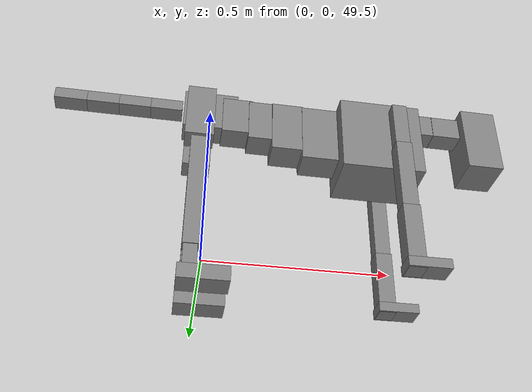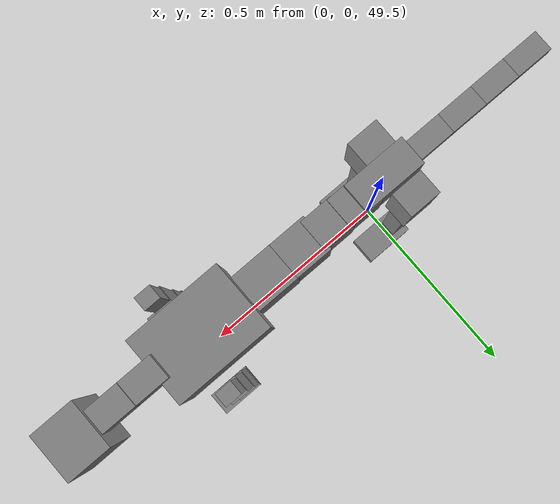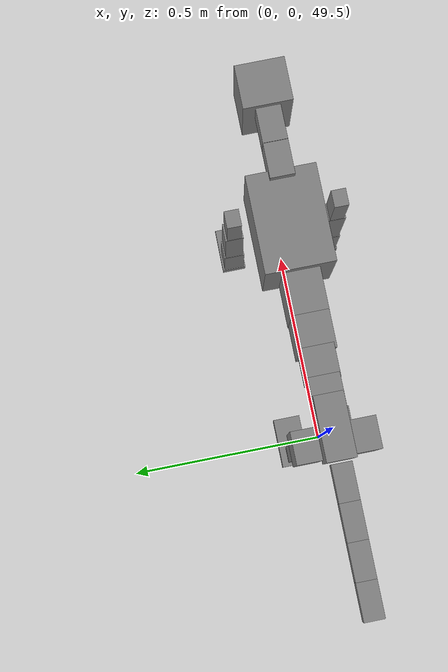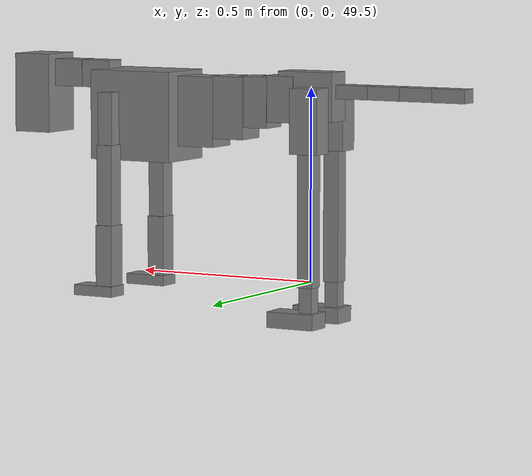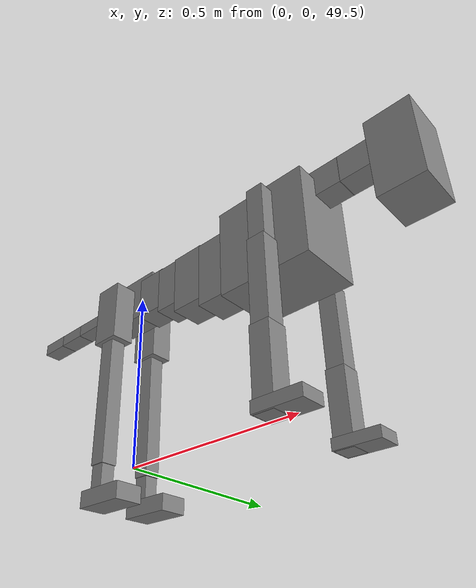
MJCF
<mujoco model="dog">

    <default>
        <joint armature="0.02" stiffness="1" damping="0.2" limited="true"/>
        <geom condim="3" friction="1 0.05 0.05" margin="0.01"/>
        <motor ctrllimited="true" ctrlrange="-1.0 1.0" forcelimited="true" gear="50"/>
    </default>

    <compiler inertiafromgeom="true" angle="radian"/>

    <option timestep="0.016" iterations="50" tolerance="1e-10" solver="Newton" jacobian="dense" cone="pyramidal"/>

    <size nconmax="20000" njmax="60000" nstack="5000000"/>
    <visual>
        <map force="0.1" zfar="30"/>
        <rgba haze="0.15 0.25 0.35 1"/>
        <quality shadowsize="2048"/>
        <global offwidth="800" offheight="800"/>
    </visual>

    <asset>
        <texture type="skybox" builtin="gradient" rgb1="0.3 0.5 0.7" rgb2="0 0 0" width="512" height="512"/>
        <texture name="texplane" type="2d" builtin="checker" rgb1=".2 .3 .4" rgb2=".1 0.15 0.2" width="512" height="512"
                 mark="cross" markrgb=".8 .8 .8"/>
        <texture name="texgeom" type="cube" builtin="flat" mark="cross" width="127" height="1278" rgb1="0.8 0.6 0.4"
                 rgb2="0.8 0.6 0.4" markrgb="1 1 1" random="0.01"/>

        <material name="matplane" reflectance="0.3" texture="texplane" texrepeat="1 1" texuniform="true"/>
        <material name="matgeom" texture="texgeom" texuniform="true" rgba="0.8 0.6 .4 1"/>
    </asset>

    <worldbody>
        <geom name="floor" pos="0 0 0" size="0 0 .25" type="plane" material="matplane" condim="3"/>

        <light directional="false" diffuse=".2 .2 .2" specular="0 0 0" pos="0 0 5" dir="0 0 -1" castshadow="false"/>
        <light mode="targetbodycom" target="torso" directional="false" diffuse=".8 .8 .8" specular="0.3 0.3 0.3"
               pos="0 0 4.0" dir="0 0 -1"/>

        <body name="root" pos="0 0 50">
            <freejoint name="root_1"/>
            <geom type="box" pos="0 0 -0.02" size="0.0774  0.0358  0.063" density="2030"/>

            <body name="spine1" pos="0.054 0 0">
                <joint name="spine1_y" axis="0 1 0" range="0 0.7" limited="true"/>
                <geom type="box" pos="0.02375 0 -0.03" size="0.04375  0.0375  0.05985" density="2030"/>

                <body name="spine2" pos="0.0612 0 0">
                    <joint name="spine2_y" axis="0 1 0" range="-0.15 0.15" limited="true"/>
                    <geom type="box" pos="0.03555  0  -0.04" size="0.04055  0.039  0.06615" density="2030"/>

                    <body name="spine3" pos="0.0730 0 0">
                        <joint name="spine3_y" axis="0 1 0" range="-0.15 0.15" limited="true"/>
                        <geom type="box" pos="0.03555  0  -0.057" size="0.04555  0.0445  0.081" density="2030"/>

                        <body name="spine4" pos="0.0780 0 0">
                            <joint name="spine4_y" axis="0 1 0" range="-0.15 0.15" limited="true"/>
                            <geom type="box" pos="0.05265  0  -0.07" size="0.05265  0.045  0.09135" density="2030"/>

                            <body name="torso" pos="0.1082 0 0">
                                <joint name="torso_y" axis="0 1 0" range="-0.15 0.15" limited="true"/>
                                <geom type="box" pos="0.11925  0  -0.085" size="0.11925  0.085  0.11745"
                                      density="2030"/>

                                <body name="neck1" pos="0.2160  0   0.0180">
                                    <joint name="neck1_y" axis="0 1 0" range="-1.2  -1" limited="true"/>
                                    <geom type="box" pos="0.0423  0  0" size="0.0423  0.03  0.036" density="2325"/>

                                    <body name="neck2" pos="0.0853  0  0">
                                        <joint name="neck2_y" axis="0 1 0" range="0.1  0" limited="true"/>
                                        <geom type="box" pos="0.0423  0  0" size="0.0423  0.03  0.036" density="2325"/>

                                        <body name="head" pos="0.0853  0  0">
                                            <joint name="head_y" axis="0 1 0" range="-0.3  -0.2" limited="true"/>
                                            <geom type="box" pos="0.0531  0  -0.055" size="0.0531  0.06  0.1044"
                                                  density="4030"/>

                                        </body>
                                    </body>
                                </body>

                                <body name="front_shoulder" pos="0.156  0   -0.0480">
                                    <joint name="front_shoulder_y" axis="0 1 0" range="-1 1.5" limited="true"/>
                                    <geom type="box" pos="0 0.13 -0.0553" size="0.0210  0.0179  0.0819" density="1158"/>
                                    <geom type="box" pos="0 -0.13 -0.0553" size="0.0210  0.0179  0.0819"
                                          density="1158"/>

                                    <body name="front_elbow" pos="0  0  -0.1105">
                                        <joint name="front_elbow_y" axis="0 1 0" range="-2 0" limited="true"/>
                                        <geom type="box" pos="0 0.13 -0.1115" size="0.0223  0.0228  0.1115"
                                              density="1081"/>
                                        <geom type="box" pos="0 -0.13 -0.1115" size="0.0223  0.0228  0.1115"
                                              density="1081"/>

                                        <body name="front_wrist" pos="0  0  -0.2230">
                                            <joint name="front_wrist_y" axis="0 1 0" range="-0.2 0" limited="true"/>
                                            <geom type="box" pos="0 0.13 -0.0804" size="0.0238  0.0265  0.0935"
                                                  density="1664"/>
                                            <geom type="box" pos="0 -0.13 -0.0804" size="0.0238  0.0265  0.0935"
                                                  density="1664"/>

                                            <body name="front_finger_end" pos="0  0  -0.1607">
                                                <joint name="front_finger_y" axis="0 1 0" range="-0.4 1"
                                                       limited="true"/>
                                                <geom type="box" pos="0.0312  0.13  0.0012"
                                                      size="0.0572  0.0312  0.0138" density="1515"/>
                                                <geom type="box" pos="0.0312  -0.13  0.0012"
                                                      size="0.0572  0.0312  0.0138" density="1515"/>

                                            </body>

                                        </body>
                                    </body>
                                </body>

                            </body>
                        </body>
                    </body>
                </body>
            </body>

            <body name="back_hip" pos="-0.03 0 -0.018">
                <joint name="back_hip_y" axis="0 1 0" range="-1.5 0.3" limited="true"/>
                <geom type="box" pos="0 0.07 -0.0610" size="0.0394  0.0309  0.0838" density="1154"/>
                <geom type="box" pos="0 -0.07 -0.0610" size="0.0394  0.0309  0.0838" density="1154"/>

                <body name="back_knee" pos="0  0  -0.1220">
                    <joint name="back_knee_y" axis="0 1 0" range="0 2.8" limited="true"/>
                    <geom type="box" pos="0 0.07 -0.1737" size="0.0212  0.0209  0.1893" density="1227"/>
                    <geom type="box" pos="0 -0.07 -0.1737" size="0.0212  0.0209  0.1893" density="1227"/>

                    <body name="back_ankle" pos="0  0  -0.3474">
                        <joint name="back_ankle_y" axis="0 1 0" range="-2.2 0" limited="true"/>
                        <geom type="box" pos="0 0.07 -0.0475" size="0.0184  0.0184  0.0588" density="1284"/>
                        <geom type="box" pos="0 -0.07 -0.0475" size="0.0184  0.0184  0.0588" density="1284"/>

                        <body name="back_toe_end" pos="0  0  -0.0951">
                            <joint name="back_toe_y" axis="0 1 0" range="-0.4 1" limited="true"/>
                            <geom type="box" pos="0.0360  0.07  -0.0055" size="0.0659  0.0360  0.0205" density="1515"/>
                            <geom type="box" pos="0.0360  -0.07  -0.0055" size="0.0659  0.0360  0.0205" density="1515"/>

                        </body>
                    </body>
                </body>
            </body>

            <body name="tail1" pos="-0.074 0 -0.006">
                <joint name="tail1_y" axis="0 1 0" range="-0.2 0.2" limited="true"/>
                <geom type="box" pos="-0.0536  0  0" size="0.045  0.025  0.0175" density="1587"/>

                <body name="tail2" pos="-0.09 0 0">
                    <joint name="tail2_y" axis="0 1 0" range="-0.2 0.2" limited="true"/>
                    <geom type="box" pos="-0.0536  0  0" size="0.045  0.025  0.0175" density="1587"/>

                    <body name="tail3" pos="-0.09 0 0">
                        <joint name="tail3_y" axis="0 1 0" range="-0.2 0.2" limited="true"/>
                        <geom type="box" pos="-0.0536  0  0" size="0.045  0.025  0.0175" density="1587"/>

                        <body name="tail4" pos="-0.09 0 0">
                            <joint name="tail4_y" axis="0 1 0" range="-0.2 0.2" limited="true"/>
                            <geom type="box" pos="-0.0536  0  0" size="0.045  0.025  0.0175" density="1587"/>

                        </body>
                    </body>
                </body>
            </body>
        </body>
    </worldbody>

    <actuator>
        <motor joint="spine1_y" forcerange="-150 150     "/>
        <motor joint="spine2_y" forcerange="-150 150     "/>
        <motor joint="spine3_y" forcerange="-150 150     "/>
        <motor joint="spine4_y" forcerange="-150 150     "/>
        <motor joint="torso_y" forcerange="-150 150     "/>
        <motor joint="neck1_y" forcerange="-100 100       "/>
        <motor joint="neck2_y" forcerange="-100 100       "/>
        <motor joint="head_y" forcerange="-150 150       "/>
        <motor joint="front_shoulder_y" forcerange="-116.53 102.89"/>
        <motor joint="front_elbow_y" forcerange="-107.59 158.07"/>
        <motor joint="front_wrist_y" forcerange="-72.31 139.30"/>
        <motor joint="front_finger_y" forcerange="-89.26 37.03"/>
        <motor joint="back_hip_y" forcerange="-397.42 214.15"/>
        <motor joint="back_knee_y" forcerange="-279.77 223.85"/>
        <motor joint="back_angle_y" forcerange="-81.42 113.18"/>
        <motor joint="back_toe_y" forcerange="-93.34 114.33"/>
        <motor joint="tail1_y" forcerange="-50 50     "/>
        <motor joint="tail2_y" forcerange="-50 50     "/>
        <motor joint="tail3_y" forcerange="-50 50     "/>
        <motor joint="tail4_y" forcerange="-50 50     "/>
    </actuator>
</mujoco>
